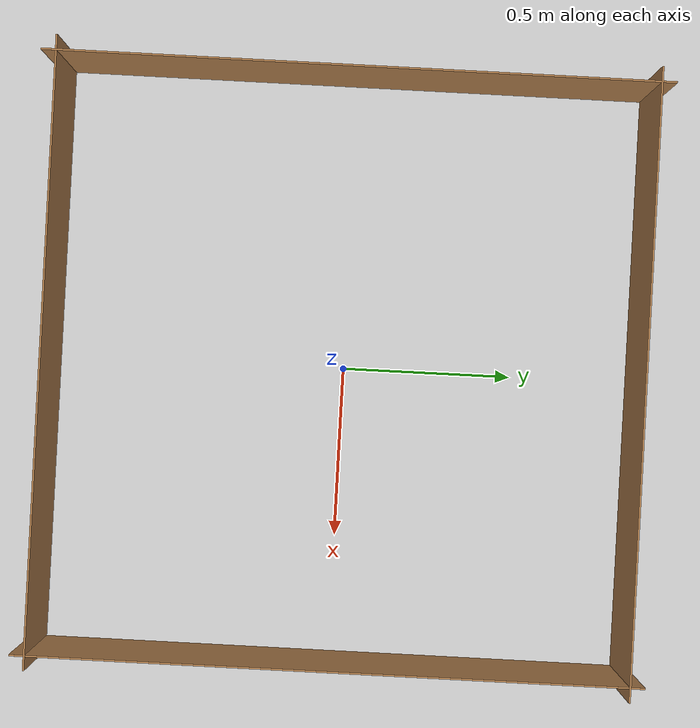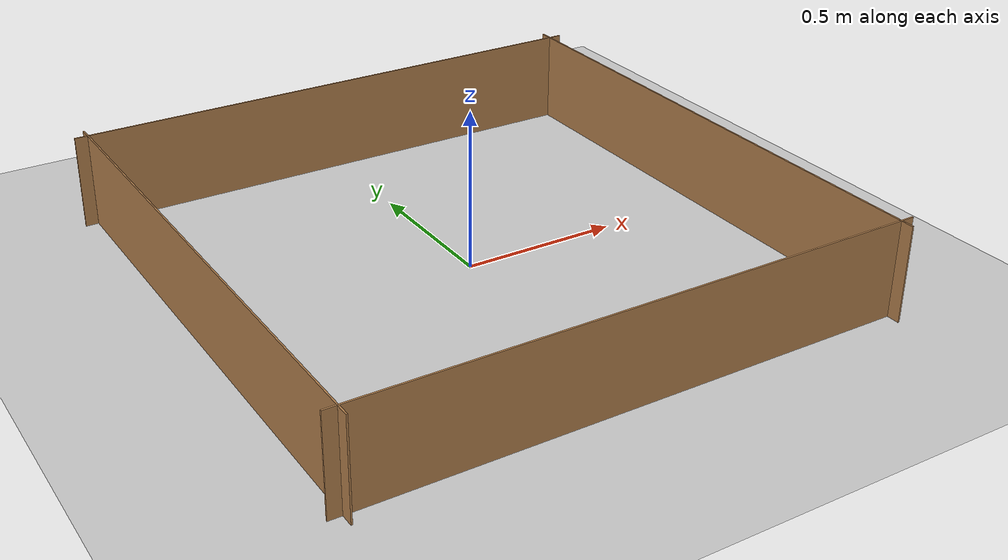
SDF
<sdf version='1.6'>
  <world name='default'>
    <!-- A global light source -->
    <include>
      <uri>model://sun</uri>
    </include>

    <!-- A ground plane -->
    <include>
      <uri>model://ground_plane</uri>
    </include>

    <physics type="ode">
      <real_time_update_rate>1000.0</real_time_update_rate>
      <max_step_size>0.001</max_step_size>
      <real_time_factor>1</real_time_factor>
      <ode>
        <solver>
          <type>quick</type>
          <iters>150</iters>
          <precon_iters>0</precon_iters>
          <sor>1.400000</sor>
          <use_dynamic_moi_rescaling>1</use_dynamic_moi_rescaling>
        </solver>
        <constraints>
          <cfm>0.00001</cfm>
          <erp>0.2</erp>
          <contact_max_correcting_vel>2000.000000</contact_max_correcting_vel>
          <contact_surface_layer>0.01000</contact_surface_layer>
        </constraints>
      </ode>
    </physics>

    <!-- Load world -->
    <include>
      <uri>model://square_eavelar</uri>
    </include>

    <scene>
      <ambient>0.4 0.4 0.4 1</ambient>
      <background>0.7 0.7 0.7 1</background>
      <shadows>false</shadows>
    </scene>

    <gui fullscreen='0'>
      <camera name='user_camera'>
        <pose>0.0 0.0 3.83 0 1.57079 1.57079</pose>
        <view_controller>orbit</view_controller>
      </camera>
    </gui>
  </world>
</sdf>

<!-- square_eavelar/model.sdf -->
<sdf version='1.6'>
  <model name='square_eavelar'>
    <pose frame=''>0 0 0 0 -0 0</pose>
    <link name='Wall_1'>
      <collision name='Wall_1_Collision'>
        <geometry>
          <box>
            <size>1.79 0.005 0.3</size>
          </box>
        </geometry>
        <pose frame=''>0 0 0.15 0 -0 0</pose>
      </collision>
      <visual name='Wall_1_Visual'>
        <pose frame=''>0 0 0.15 0 -0 0</pose>
        <geometry>
          <box>
            <size>1.79 0.005 0.3</size>
          </box>
        </geometry>
        <material>
          <script>
            <uri>file://media/materials/scripts/gazebo.material</uri>
            <name>Gazebo/Wood</name>
          </script>
          <ambient>1 1 1 1</ambient>
        </material>
      </visual>
      <pose frame=''>0 0.8525 0 0 -0 0</pose>
    </link>
    <link name='Wall_2'>
      <collision name='Wall_2_Collision'>
        <geometry>
          <box>
            <size>1.79 0.005 0.3</size>
          </box>
        </geometry>
        <pose frame=''>0 0 0.15 0 -0 0</pose>
      </collision>
      <visual name='Wall_2_Visual'>
        <pose frame=''>0 0 0.15 0 -0 0</pose>
        <geometry>
          <box>
            <size>1.79 0.005 0.3</size>
          </box>
        </geometry>
        <material>
          <script>
            <uri>file://media/materials/scripts/gazebo.material</uri>
            <name>Gazebo/Wood</name>
          </script>
          <ambient>1 1 1 1</ambient>
        </material>
      </visual>
      <pose frame=''>-0.8525 0 0 0 0 -1.5708</pose>
    </link>
    <link name='Wall_3'>
      <collision name='Wall_3_Collision'>
        <geometry>
          <box>
            <size>1.79 0.005 0.3</size>
          </box>
        </geometry>
        <pose frame=''>0 0 0.15 0 -0 0</pose>
      </collision>
      <visual name='Wall_3_Visual'>
        <pose frame=''>0 0 0.15 0 -0 0</pose>
        <geometry>
          <box>
            <size>1.79 0.005 0.3</size>
          </box>
        </geometry>
        <material>
          <script>
            <uri>file://media/materials/scripts/gazebo.material</uri>
            <name>Gazebo/Wood</name>
          </script>
          <ambient>1 1 1 1</ambient>
        </material>
      </visual>
      <pose frame=''>0 -0.8525 0 0 -0 0</pose>
    </link>
    <link name='Wall_4'>
      <collision name='Wall_4_Collision'>
        <geometry>
          <box>
            <size>1.79 0.005 0.3</size>
          </box>
        </geometry>
        <pose frame=''>0 0 0.15 0 -0 0</pose>
      </collision>
      <visual name='Wall_4_Visual'>
        <pose frame=''>0 0 0.15 0 -0 0</pose>
        <geometry>
          <box>
            <size>1.79 0.005 0.3</size>
          </box>
        </geometry>
        <material>
          <script>
            <uri>file://media/materials/scripts/gazebo.material</uri>
            <name>Gazebo/Wood</name>
          </script>
          <ambient>1 1 1 1</ambient>
        </material>
      </visual>
      <pose frame=''>0.8525 0 0 0 -0 1.5708</pose>
    </link>
    <static>1</static>
  </model>
</sdf>
